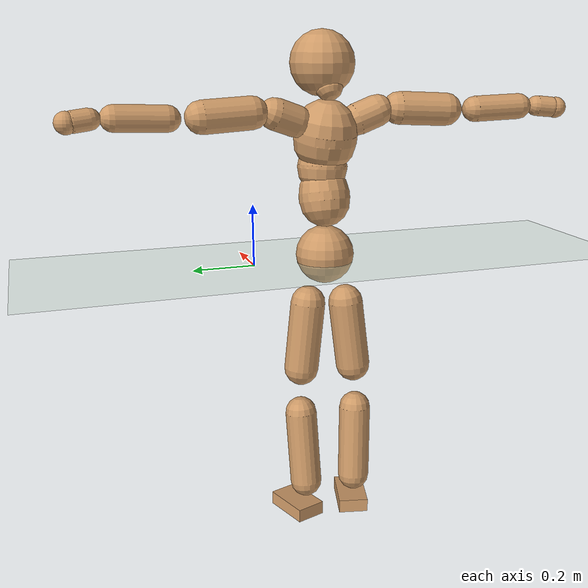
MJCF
<mujoco model="humanoid">
  <compiler coordinate="local" angle="radian"/>
  <default>
    <joint damping="0.0" armature="0.01" stiffness="0.0" limited="true"/>
    <geom conaffinity="1" condim="3" contype="7" margin="0.001" rgba="0.8 0.6 .4 1"/>
  </default>
  <asset>
    <texture type="skybox" builtin="gradient" rgb1=".4 .5 .6" rgb2="0 0 0" width="100" height="100"/>
    <texture builtin="flat" height="1278" mark="cross" markrgb="1 1 1" name="texgeom" random="0.01" rgb1="0.8 0.6 0.4" rgb2="0.8 0.6 0.4" type="cube" width="127"/>
    <texture builtin="checker" height="100" name="texplane" rgb1="0 0 0" rgb2="0.8 0.8 0.8" type="2d" width="100"/>
    <material name="MatPlane" reflectance="0.5" shininess="1" specular="1" texrepeat="60 60" texture="texplane"/>
    <material name="geom" texture="texgeom" texuniform="true"/>
  </asset>
  <worldbody>
    <light cutoff="100" diffuse="1 1 1" dir="-0 0 -1.3" directional="true" exponent="1" pos="0 0 1.3" specular=".1 .1 .1"/>
    <geom conaffinity="1" condim="3" name="floor" pos="0 0 0" rgba="0.8 0.9 0.8 1" size="100 100 .2" type="plane" material="MatPlane"/>
    <body name="Pelvis" pos="0.001 -0.2406 0.0214">
      <freejoint name="Pelvis"/>
      <geom type="sphere" contype="1" conaffinity="1" density="500" size="0.0957" pos="0.0000 0.0000 0.0000" name="Pelvis"/>
      <body name="L_Hip" pos="-0.0173 0.057 -0.0824">
        <joint name="L_Hip_x" type="hinge" pos="0 0 0" axis="1 0 0" stiffness="800" damping="80" armature="0.02" range="-180.0000 180.0000"/>
        <joint name="L_Hip_y" type="hinge" pos="0 0 0" axis="0 1 0" stiffness="800" damping="80" armature="0.02" range="-180.0000 180.0000"/>
        <joint name="L_Hip_z" type="hinge" pos="0 0 0" axis="0 0 1" stiffness="800" damping="80" armature="0.02" range="-180.0000 180.0000"/>
        <geom type="capsule" contype="1" conaffinity="1" density="500" fromto="0.0009 0.0082 -0.0760 0.0035 0.0326 -0.3041" size="0.0575" name="L_Hip"/>
        <body name="L_Knee" pos="0.0044 0.0408 -0.3801">
          <joint name="L_Knee_x" type="hinge" pos="0 0 0" axis="1 0 0" stiffness="800" damping="80" armature="0.02" range="-180.0000 180.0000"/>
          <joint name="L_Knee_y" type="hinge" pos="0 0 0" axis="0 1 0" stiffness="800" damping="80" armature="0.02" range="-180.0000 180.0000"/>
          <joint name="L_Knee_z" type="hinge" pos="0 0 0" axis="0 0 1" stiffness="800" damping="80" armature="0.02" range="-180.0000 180.0000"/>
          <geom type="capsule" contype="1" conaffinity="1" density="500" fromto="-0.0076 -0.0029 -0.0828 -0.0302 -0.0116 -0.3310" size="0.0528" name="L_Knee"/>
          <body name="L_Ankle" pos="-0.0378 -0.0144 -0.4138">
            <joint name="L_Ankle_x" type="hinge" pos="0 0 0" axis="1 0 0" stiffness="800" damping="80" armature="0.02" range="-180.0000 180.0000"/>
            <joint name="L_Ankle_y" type="hinge" pos="0 0 0" axis="0 1 0" stiffness="800" damping="80" armature="0.02" range="-180.0000 180.0000"/>
            <joint name="L_Ankle_z" type="hinge" pos="0 0 0" axis="0 0 1" stiffness="800" damping="80" armature="0.02" range="-180.0000 180.0000"/>
            <geom type="box" contype="1" conaffinity="1" density="500" pos="0.0596 0.0200 -0.0292" size="0.0835 0.05 0.0223" quat="0.9869 0.0000 0.0000 0.1612" name="L_Ankle"/>
            <body name="L_Toe" pos="0.1191 0.04 -0.0583">
              <joint name="L_Toe_x" type="hinge" pos="0 0 0" axis="1 0 0" stiffness="500" damping="50" armature="0.02" range="-180.0000 180.0000"/>
              <joint name="L_Toe_y" type="hinge" pos="0 0 0" axis="0 1 0" stiffness="500" damping="50" armature="0.02" range="-180.0000 180.0000"/>
              <joint name="L_Toe_z" type="hinge" pos="0 0 0" axis="0 0 1" stiffness="500" damping="50" armature="0.02" range="-180.0000 180.0000"/>
              <geom type="box" contype="1" conaffinity="1" density="500" pos="0.0000 0.0000 0.0292" size="0.001 0.0024 0.0011" quat="0.9861 0.0000 0.0000 0.1660" name="L_Toe"/>
            </body>
          </body>
        </body>
      </body>
      <body name="R_Hip" pos="-0.0131 -0.0596 -0.0915">
        <joint name="R_Hip_x" type="hinge" pos="0 0 0" axis="1 0 0" stiffness="800" damping="80" armature="0.02" range="-180.0000 180.0000"/>
        <joint name="R_Hip_y" type="hinge" pos="0 0 0" axis="0 1 0" stiffness="800" damping="80" armature="0.02" range="-180.0000 180.0000"/>
        <joint name="R_Hip_z" type="hinge" pos="0 0 0" axis="0 0 1" stiffness="800" damping="80" armature="0.02" range="-180.0000 180.0000"/>
        <geom type="capsule" contype="1" conaffinity="1" density="500" fromto="-0.0012 -0.0087 -0.0756 -0.0049 -0.0346 -0.3024" size="0.0574" name="R_Hip"/>
        <body name="R_Knee" pos="-0.0061 -0.0433 -0.378">
          <joint name="R_Knee_x" type="hinge" pos="0 0 0" axis="1 0 0" stiffness="800" damping="80" armature="0.02" range="-180.0000 180.0000"/>
          <joint name="R_Knee_y" type="hinge" pos="0 0 0" axis="0 1 0" stiffness="800" damping="80" armature="0.02" range="-180.0000 180.0000"/>
          <joint name="R_Knee_z" type="hinge" pos="0 0 0" axis="0 0 1" stiffness="800" damping="80" armature="0.02" range="-180.0000 180.0000"/>
          <geom type="capsule" contype="1" conaffinity="1" density="500" fromto="-0.0068 0.0038 -0.0817 -0.0270 0.0151 -0.3269" size="0.0533" name="R_Knee"/>
          <body name="R_Ankle" pos="-0.0338 0.0188 -0.4086">
            <joint name="R_Ankle_x" type="hinge" pos="0 0 0" axis="1 0 0" stiffness="800" damping="80" armature="0.02" range="-180.0000 180.0000"/>
            <joint name="R_Ankle_y" type="hinge" pos="0 0 0" axis="0 1 0" stiffness="800" damping="80" armature="0.02" range="-180.0000 180.0000"/>
            <joint name="R_Ankle_z" type="hinge" pos="0 0 0" axis="0 0 1" stiffness="800" damping="80" armature="0.02" range="-180.0000 180.0000"/>
            <geom type="box" contype="1" conaffinity="1" density="500" pos="0.0634 -0.0153 -0.0315" size="0.0882 0.05 0.0224" quat="0.9930 0.0000 0.0000 -0.1178" name="R_Ankle"/>
            <body name="R_Toe" pos="0.1268 -0.0305 -0.0629">
              <joint name="R_Toe_x" type="hinge" pos="0 0 0" axis="1 0 0" stiffness="500" damping="50" armature="0.02" range="-180.0000 180.0000"/>
              <joint name="R_Toe_y" type="hinge" pos="0 0 0" axis="0 1 0" stiffness="500" damping="50" armature="0.02" range="-180.0000 180.0000"/>
              <joint name="R_Toe_z" type="hinge" pos="0 0 0" axis="0 0 1" stiffness="500" damping="50" armature="0.02" range="-180.0000 180.0000"/>
              <geom type="box" contype="1" conaffinity="1" density="500" pos="0.0000 0.0000 0.0325" size="0.0011 0.0025 0.0012" quat="0.9941 0.0000 0.0000 -0.1087" name="R_Toe"/>
            </body>
          </body>
        </body>
      </body>
      <body name="Torso" pos="-0.0316 0.0044 0.1257">
        <joint name="Torso_x" type="hinge" pos="0 0 0" axis="1 0 0" stiffness="1000" damping="100" armature="0.02" range="-180.0000 180.0000"/>
        <joint name="Torso_y" type="hinge" pos="0 0 0" axis="0 1 0" stiffness="1000" damping="100" armature="0.02" range="-180.0000 180.0000"/>
        <joint name="Torso_z" type="hinge" pos="0 0 0" axis="0 0 1" stiffness="1000" damping="100" armature="0.02" range="-180.0000 180.0000"/>
        <geom type="capsule" contype="1" conaffinity="1" density="500" fromto="0.0184 0.0027 0.0818 0.0122 0.0018 0.0545" size="0.0828" name="Torso"/>
        <body name="Spine" pos="0.0306 0.0045 0.1363">
          <joint name="Spine_x" type="hinge" pos="0 0 0" axis="1 0 0" stiffness="1000" damping="100" armature="0.02" range="-180.0000 180.0000"/>
          <joint name="Spine_y" type="hinge" pos="0 0 0" axis="0 1 0" stiffness="1000" damping="100" armature="0.02" range="-180.0000 180.0000"/>
          <joint name="Spine_z" type="hinge" pos="0 0 0" axis="0 0 1" stiffness="1000" damping="100" armature="0.02" range="-180.0000 180.0000"/>
          <geom type="capsule" contype="1" conaffinity="1" density="500" fromto="0.0018 -0.0020 0.0327 0.0012 -0.0013 0.0218" size="0.0813" name="Spine"/>
          <body name="Chest" pos="0.003 -0.0033 0.0545">
            <joint name="Chest_x" type="hinge" pos="0 0 0" axis="1 0 0" stiffness="1000" damping="100" armature="0.02" range="-180.0000 180.0000"/>
            <joint name="Chest_y" type="hinge" pos="0 0 0" axis="0 1 0" stiffness="1000" damping="100" armature="0.02" range="-180.0000 180.0000"/>
            <joint name="Chest_z" type="hinge" pos="0 0 0" axis="0 0 1" stiffness="1000" damping="100" armature="0.02" range="-180.0000 180.0000"/>
            <geom type="capsule" contype="1" conaffinity="1" density="500" fromto="-0.0168 -0.0054 0.0866 -0.0112 -0.0036 0.0577" size="0.1019" name="Chest"/>
            <body name="Neck" pos="-0.0363 -0.0137 0.2082">
              <joint name="Neck_x" type="hinge" pos="0 0 0" axis="1 0 0" stiffness="500" damping="50" armature="0.02" range="-180.0000 180.0000"/>
              <joint name="Neck_y" type="hinge" pos="0 0 0" axis="0 1 0" stiffness="500" damping="50" armature="0.02" range="-180.0000 180.0000"/>
              <joint name="Neck_z" type="hinge" pos="0 0 0" axis="0 0 1" stiffness="500" damping="50" armature="0.02" range="-180.0000 180.0000"/>
              <geom type="capsule" contype="1" conaffinity="1" density="500" fromto="0.0102 0.0017 0.0177 0.0410 0.0068 0.0707" size="0.0453" name="Neck"/>
              <body name="Head" pos="0.0512 0.0085 0.0884">
                <joint name="Head_x" type="hinge" pos="0 0 0" axis="1 0 0" stiffness="500" damping="50" armature="0.02" range="-180.0000 180.0000"/>
                <joint name="Head_y" type="hinge" pos="0 0 0" axis="0 1 0" stiffness="500" damping="50" armature="0.02" range="-180.0000 180.0000"/>
                <joint name="Head_z" type="hinge" pos="0 0 0" axis="0 0 1" stiffness="500" damping="50" armature="0.02" range="-180.0000 180.0000"/>
                <geom type="sphere" contype="1" conaffinity="1" density="500" size="0.1041" pos="0.0000 0.0000 0.0000" name="Head"/>
              </body>
            </body>
            <body name="L_Thorax" pos="-0.0231 0.0709 0.112">
              <joint name="L_Thorax_x" type="hinge" pos="0 0 0" axis="1 0 0" stiffness="500" damping="50" armature="0.02" range="-180.0000 180.0000"/>
              <joint name="L_Thorax_y" type="hinge" pos="0 0 0" axis="0 1 0" stiffness="500" damping="50" armature="0.02" range="-180.0000 180.0000"/>
              <joint name="L_Thorax_z" type="hinge" pos="0 0 0" axis="0 0 1" stiffness="500" damping="50" armature="0.02" range="-180.0000 180.0000"/>
              <geom type="capsule" contype="1" conaffinity="1" density="500" fromto="-0.0039 0.0240 0.0086 -0.0155 0.0959 0.0345" size="0.0507" name="L_Thorax"/>
              <body name="L_Shoulder" pos="-0.0194 0.1198 0.0431">
                <joint name="L_Shoulder_x" type="hinge" pos="0 0 0" axis="1 0 0" stiffness="500" damping="50" armature="0.02" range="-720.0000 720.0000"/>
                <joint name="L_Shoulder_y" type="hinge" pos="0 0 0" axis="0 1 0" stiffness="500" damping="50" armature="0.02" range="-720.0000 720.0000"/>
                <joint name="L_Shoulder_z" type="hinge" pos="0 0 0" axis="0 0 1" stiffness="500" damping="50" armature="0.02" range="-720.0000 720.0000"/>
                <geom type="capsule" contype="1" conaffinity="1" density="500" fromto="-0.0035 0.0516 -0.0028 -0.0140 0.2065 -0.0110" size="0.0518" name="L_Shoulder"/>
                <body name="L_Elbow" pos="-0.0175 0.2581 -0.0138">
                  <joint name="L_Elbow_x" type="hinge" pos="0 0 0" axis="1 0 0" stiffness="500" damping="50" armature="0.02" range="-720.0000 720.0000"/>
                  <joint name="L_Elbow_y" type="hinge" pos="0 0 0" axis="0 1 0" stiffness="500" damping="50" armature="0.02" range="-720.0000 720.0000"/>
                  <joint name="L_Elbow_z" type="hinge" pos="0 0 0" axis="0 0 1" stiffness="500" damping="50" armature="0.02" range="-720.0000 720.0000"/>
                  <geom type="capsule" contype="1" conaffinity="1" density="500" fromto="-0.0021 0.0512 0.0019 -0.0085 0.2049 0.0077" size="0.0406" name="L_Elbow"/>
                  <body name="L_Wrist" pos="-0.0107 0.2561 0.0097">
                    <joint name="L_Wrist_x" type="hinge" pos="0 0 0" axis="1 0 0" stiffness="300" damping="30" armature="0.02" range="-180.0000 180.0000"/>
                    <joint name="L_Wrist_y" type="hinge" pos="0 0 0" axis="0 1 0" stiffness="300" damping="30" armature="0.02" range="-180.0000 180.0000"/>
                    <joint name="L_Wrist_z" type="hinge" pos="0 0 0" axis="0 0 1" stiffness="300" damping="30" armature="0.02" range="-180.0000 180.0000"/>
                    <geom type="capsule" contype="1" conaffinity="1" density="500" fromto="-0.0029 0.0163 -0.0019 -0.0117 0.0651 -0.0077" size="0.0323" name="L_Wrist"/>
                    <body name="L_Hand" pos="-0.0146 0.0814 -0.0096">
                      <joint name="L_Hand_x" type="hinge" pos="0 0 0" axis="1 0 0" stiffness="300" damping="30" armature="0.02" range="-180.0000 180.0000"/>
                      <joint name="L_Hand_y" type="hinge" pos="0 0 0" axis="0 1 0" stiffness="300" damping="30" armature="0.02" range="-180.0000 180.0000"/>
                      <joint name="L_Hand_z" type="hinge" pos="0 0 0" axis="0 0 1" stiffness="300" damping="30" armature="0.02" range="-180.0000 180.0000"/>
                      <geom type="sphere" contype="1" conaffinity="1" density="500" size="0.0335" pos="0.0000 0.0000 0.0000" name="L_Hand"/>
                    </body>
                  </body>
                </body>
              </body>
            </body>
            <body name="R_Thorax" pos="-0.0245 -0.0844 0.1126">
              <joint name="R_Thorax_x" type="hinge" pos="0 0 0" axis="1 0 0" stiffness="500" damping="50" armature="0.02" range="-180.0000 180.0000"/>
              <joint name="R_Thorax_y" type="hinge" pos="0 0 0" axis="0 1 0" stiffness="500" damping="50" armature="0.02" range="-180.0000 180.0000"/>
              <joint name="R_Thorax_z" type="hinge" pos="0 0 0" axis="0 0 1" stiffness="500" damping="50" armature="0.02" range="-180.0000 180.0000"/>
              <geom type="capsule" contype="1" conaffinity="1" density="500" fromto="-0.0016 -0.0224 0.0090 -0.0063 -0.0895 0.0358" size="0.0513" name="R_Thorax"/>
              <body name="R_Shoulder" pos="-0.0079 -0.1119 0.0448">
                <joint name="R_Shoulder_x" type="hinge" pos="0 0 0" axis="1 0 0" stiffness="500" damping="50" armature="0.02" range="-720.0000 720.0000"/>
                <joint name="R_Shoulder_y" type="hinge" pos="0 0 0" axis="0 1 0" stiffness="500" damping="50" armature="0.02" range="-720.0000 720.0000"/>
                <joint name="R_Shoulder_z" type="hinge" pos="0 0 0" axis="0 0 1" stiffness="500" damping="50" armature="0.02" range="-720.0000 720.0000"/>
                <geom type="capsule" contype="1" conaffinity="1" density="500" fromto="-0.0049 -0.0523 -0.0025 -0.0197 -0.2091 -0.0098" size="0.0535" name="R_Shoulder"/>
                <body name="R_Elbow" pos="-0.0246 -0.2614 -0.0123">
                  <joint name="R_Elbow_x" type="hinge" pos="0 0 0" axis="1 0 0" stiffness="500" damping="50" armature="0.02" range="-720.0000 720.0000"/>
                  <joint name="R_Elbow_y" type="hinge" pos="0 0 0" axis="0 1 0" stiffness="500" damping="50" armature="0.02" range="-720.0000 720.0000"/>
                  <joint name="R_Elbow_z" type="hinge" pos="0 0 0" axis="0 0 1" stiffness="500" damping="50" armature="0.02" range="-720.0000 720.0000"/>
                  <geom type="capsule" contype="1" conaffinity="1" density="500" fromto="-0.0017 -0.0530 0.0018 -0.0069 -0.2119 0.0072" size="0.0423" name="R_Elbow"/>
                  <body name="R_Wrist" pos="-0.0086 -0.2649 0.009">
                    <joint name="R_Wrist_x" type="hinge" pos="0 0 0" axis="1 0 0" stiffness="300" damping="30" armature="0.02" range="-180.0000 180.0000"/>
                    <joint name="R_Wrist_y" type="hinge" pos="0 0 0" axis="0 1 0" stiffness="300" damping="30" armature="0.02" range="-180.0000 180.0000"/>
                    <joint name="R_Wrist_z" type="hinge" pos="0 0 0" axis="0 0 1" stiffness="300" damping="30" armature="0.02" range="-180.0000 180.0000"/>
                    <geom type="capsule" contype="1" conaffinity="1" density="500" fromto="-0.0019 -0.0171 -0.0016 -0.0076 -0.0685 -0.0065" size="0.0339" name="R_Wrist"/>
                    <body name="R_Hand" pos="-0.0095 -0.0856 -0.0081">
                      <joint name="R_Hand_x" type="hinge" pos="0 0 0" axis="1 0 0" stiffness="300" damping="30" armature="0.02" range="-180.0000 180.0000"/>
                      <joint name="R_Hand_y" type="hinge" pos="0 0 0" axis="0 1 0" stiffness="300" damping="30" armature="0.02" range="-180.0000 180.0000"/>
                      <joint name="R_Hand_z" type="hinge" pos="0 0 0" axis="0 0 1" stiffness="300" damping="30" armature="0.02" range="-180.0000 180.0000"/>
                      <geom type="sphere" contype="1" conaffinity="1" density="500" size="0.0349" pos="0.0000 0.0000 0.0000" name="R_Hand"/>
                    </body>
                  </body>
                </body>
              </body>
            </body>
          </body>
        </body>
      </body>
    </body>
  </worldbody>
  <actuator>
    <motor name="L_Hip_x" joint="L_Hip_x" gear="500"/>
    <motor name="L_Hip_y" joint="L_Hip_y" gear="500"/>
    <motor name="L_Hip_z" joint="L_Hip_z" gear="500"/>
    <motor name="L_Knee_x" joint="L_Knee_x" gear="500"/>
    <motor name="L_Knee_y" joint="L_Knee_y" gear="500"/>
    <motor name="L_Knee_z" joint="L_Knee_z" gear="500"/>
    <motor name="L_Ankle_x" joint="L_Ankle_x" gear="500"/>
    <motor name="L_Ankle_y" joint="L_Ankle_y" gear="500"/>
    <motor name="L_Ankle_z" joint="L_Ankle_z" gear="500"/>
    <motor name="L_Toe_x" joint="L_Toe_x" gear="500"/>
    <motor name="L_Toe_y" joint="L_Toe_y" gear="500"/>
    <motor name="L_Toe_z" joint="L_Toe_z" gear="500"/>
    <motor name="R_Hip_x" joint="R_Hip_x" gear="500"/>
    <motor name="R_Hip_y" joint="R_Hip_y" gear="500"/>
    <motor name="R_Hip_z" joint="R_Hip_z" gear="500"/>
    <motor name="R_Knee_x" joint="R_Knee_x" gear="500"/>
    <motor name="R_Knee_y" joint="R_Knee_y" gear="500"/>
    <motor name="R_Knee_z" joint="R_Knee_z" gear="500"/>
    <motor name="R_Ankle_x" joint="R_Ankle_x" gear="500"/>
    <motor name="R_Ankle_y" joint="R_Ankle_y" gear="500"/>
    <motor name="R_Ankle_z" joint="R_Ankle_z" gear="500"/>
    <motor name="R_Toe_x" joint="R_Toe_x" gear="500"/>
    <motor name="R_Toe_y" joint="R_Toe_y" gear="500"/>
    <motor name="R_Toe_z" joint="R_Toe_z" gear="500"/>
    <motor name="Torso_x" joint="Torso_x" gear="500"/>
    <motor name="Torso_y" joint="Torso_y" gear="500"/>
    <motor name="Torso_z" joint="Torso_z" gear="500"/>
    <motor name="Spine_x" joint="Spine_x" gear="500"/>
    <motor name="Spine_y" joint="Spine_y" gear="500"/>
    <motor name="Spine_z" joint="Spine_z" gear="500"/>
    <motor name="Chest_x" joint="Chest_x" gear="500"/>
    <motor name="Chest_y" joint="Chest_y" gear="500"/>
    <motor name="Chest_z" joint="Chest_z" gear="500"/>
    <motor name="Neck_x" joint="Neck_x" gear="500"/>
    <motor name="Neck_y" joint="Neck_y" gear="500"/>
    <motor name="Neck_z" joint="Neck_z" gear="500"/>
    <motor name="Head_x" joint="Head_x" gear="500"/>
    <motor name="Head_y" joint="Head_y" gear="500"/>
    <motor name="Head_z" joint="Head_z" gear="500"/>
    <motor name="L_Thorax_x" joint="L_Thorax_x" gear="500"/>
    <motor name="L_Thorax_y" joint="L_Thorax_y" gear="500"/>
    <motor name="L_Thorax_z" joint="L_Thorax_z" gear="500"/>
    <motor name="L_Shoulder_x" joint="L_Shoulder_x" gear="500"/>
    <motor name="L_Shoulder_y" joint="L_Shoulder_y" gear="500"/>
    <motor name="L_Shoulder_z" joint="L_Shoulder_z" gear="500"/>
    <motor name="L_Elbow_x" joint="L_Elbow_x" gear="500"/>
    <motor name="L_Elbow_y" joint="L_Elbow_y" gear="500"/>
    <motor name="L_Elbow_z" joint="L_Elbow_z" gear="500"/>
    <motor name="L_Wrist_x" joint="L_Wrist_x" gear="500"/>
    <motor name="L_Wrist_y" joint="L_Wrist_y" gear="500"/>
    <motor name="L_Wrist_z" joint="L_Wrist_z" gear="500"/>
    <motor name="L_Hand_x" joint="L_Hand_x" gear="500"/>
    <motor name="L_Hand_y" joint="L_Hand_y" gear="500"/>
    <motor name="L_Hand_z" joint="L_Hand_z" gear="500"/>
    <motor name="R_Thorax_x" joint="R_Thorax_x" gear="500"/>
    <motor name="R_Thorax_y" joint="R_Thorax_y" gear="500"/>
    <motor name="R_Thorax_z" joint="R_Thorax_z" gear="500"/>
    <motor name="R_Shoulder_x" joint="R_Shoulder_x" gear="500"/>
    <motor name="R_Shoulder_y" joint="R_Shoulder_y" gear="500"/>
    <motor name="R_Shoulder_z" joint="R_Shoulder_z" gear="500"/>
    <motor name="R_Elbow_x" joint="R_Elbow_x" gear="500"/>
    <motor name="R_Elbow_y" joint="R_Elbow_y" gear="500"/>
    <motor name="R_Elbow_z" joint="R_Elbow_z" gear="500"/>
    <motor name="R_Wrist_x" joint="R_Wrist_x" gear="500"/>
    <motor name="R_Wrist_y" joint="R_Wrist_y" gear="500"/>
    <motor name="R_Wrist_z" joint="R_Wrist_z" gear="500"/>
    <motor name="R_Hand_x" joint="R_Hand_x" gear="500"/>
    <motor name="R_Hand_y" joint="R_Hand_y" gear="500"/>
    <motor name="R_Hand_z" joint="R_Hand_z" gear="500"/>
  </actuator>
  <contact>
    <exclude body1="Torso" body2="Chest"/>
    <exclude body1="Head" body2="Chest"/>
    <exclude body1="R_Knee" body2="R_Toe"/>
    <exclude body1="R_Knee" body2="L_Ankle"/>
    <exclude body1="R_Knee" body2="L_Toe"/>
    <exclude body1="L_Knee" body2="L_Toe"/>
    <exclude body1="L_Knee" body2="R_Ankle"/>
    <exclude body1="L_Knee" body2="R_Toe"/>
    <exclude body1="L_Shoulder" body2="Chest"/>
    <exclude body1="R_Shoulder" body2="Chest"/>
  </contact>
  <sensor/>
  <size njmax="700" nconmax="700"/>
</mujoco>
